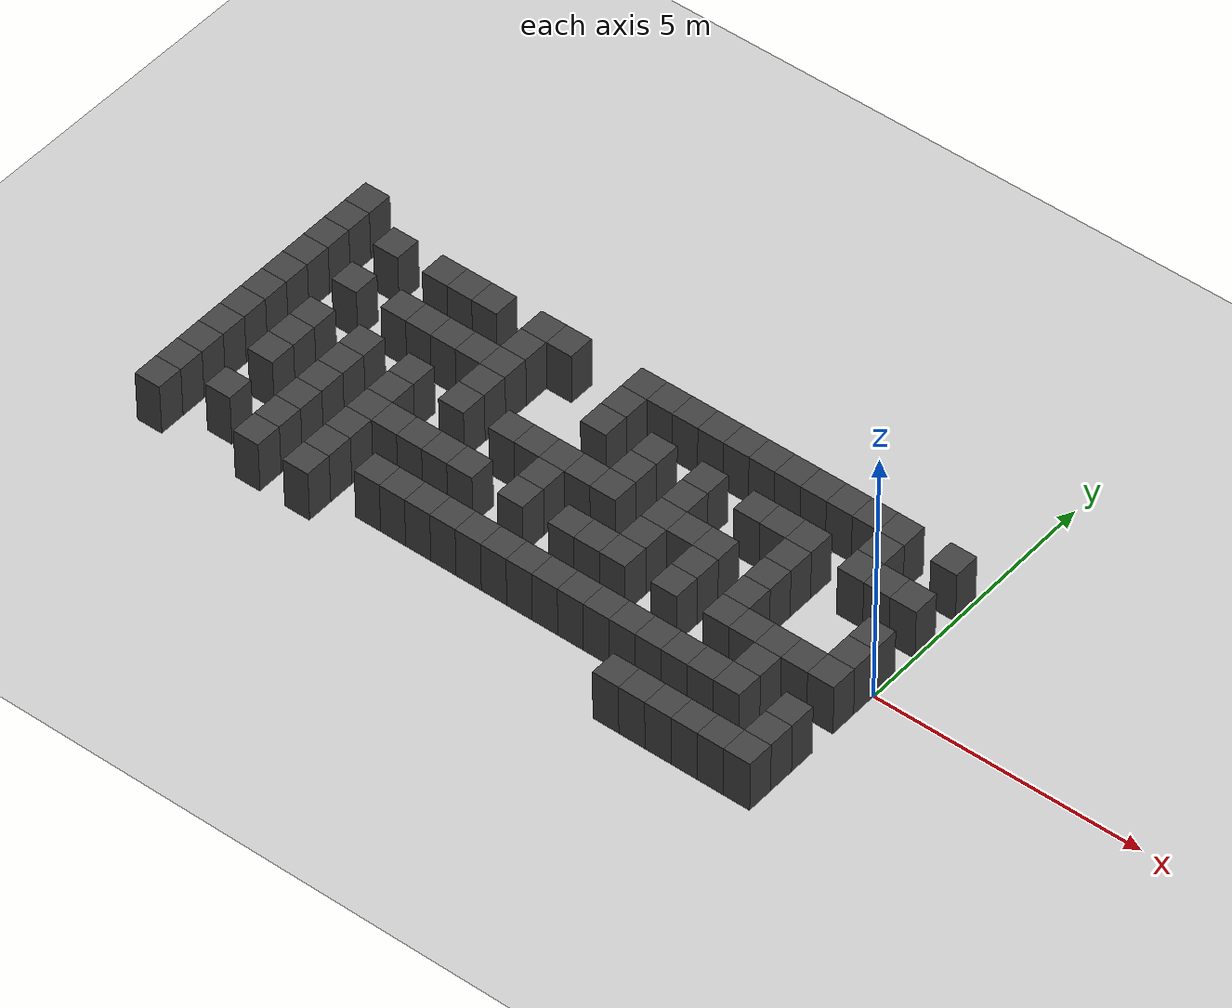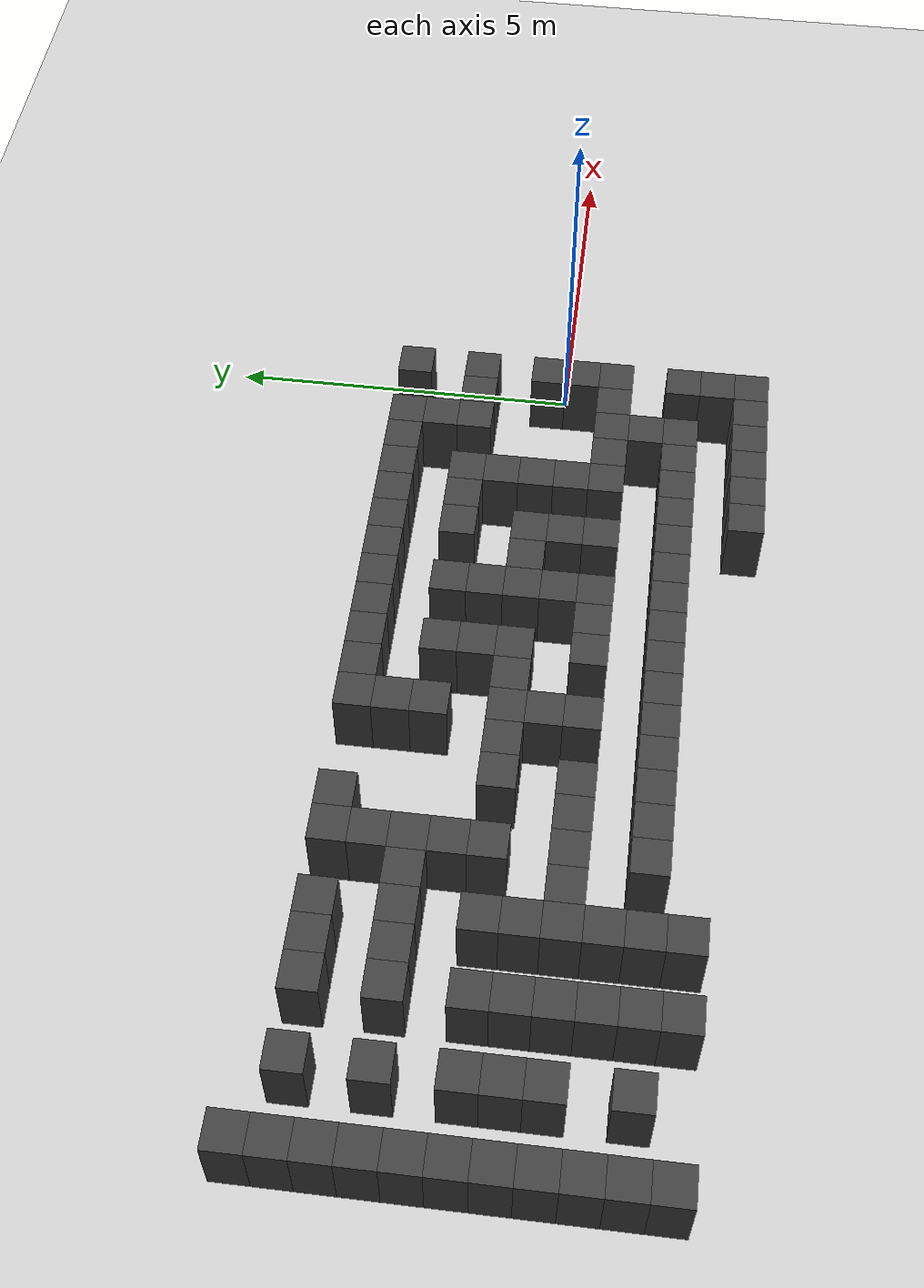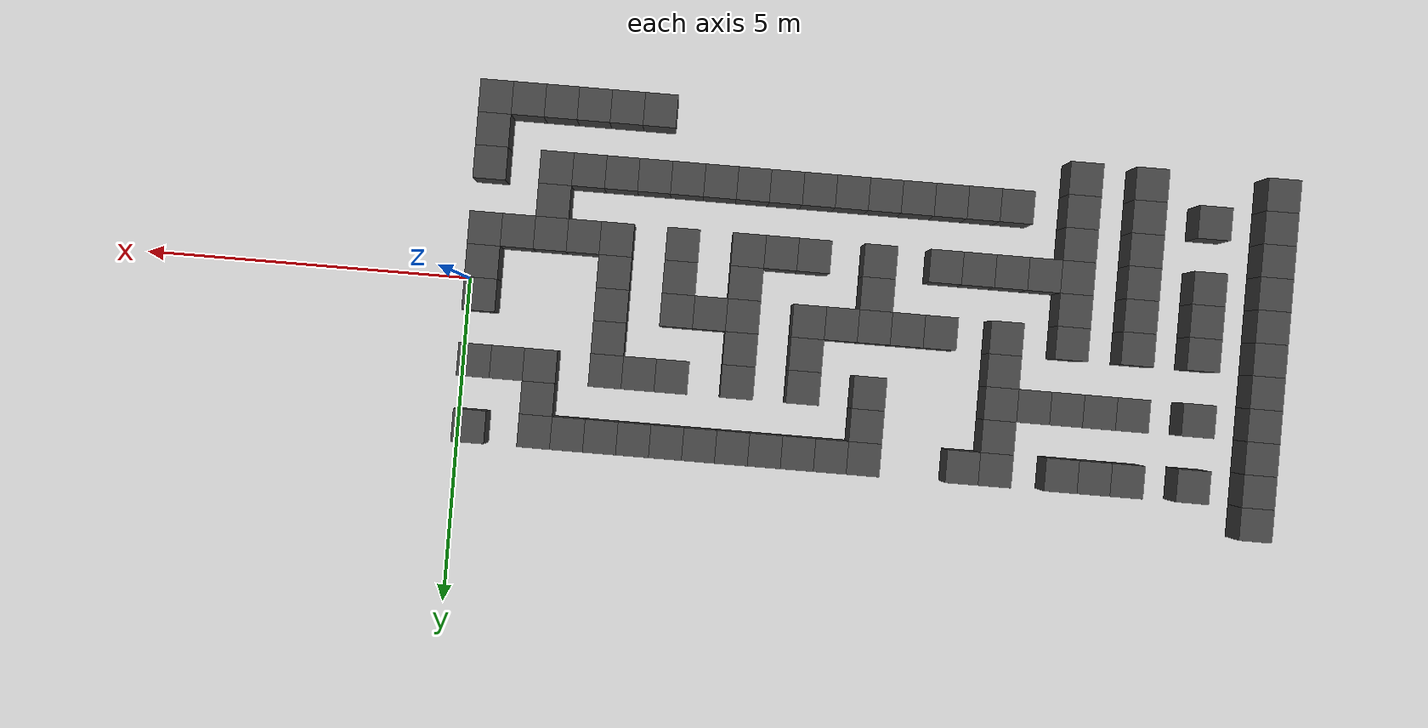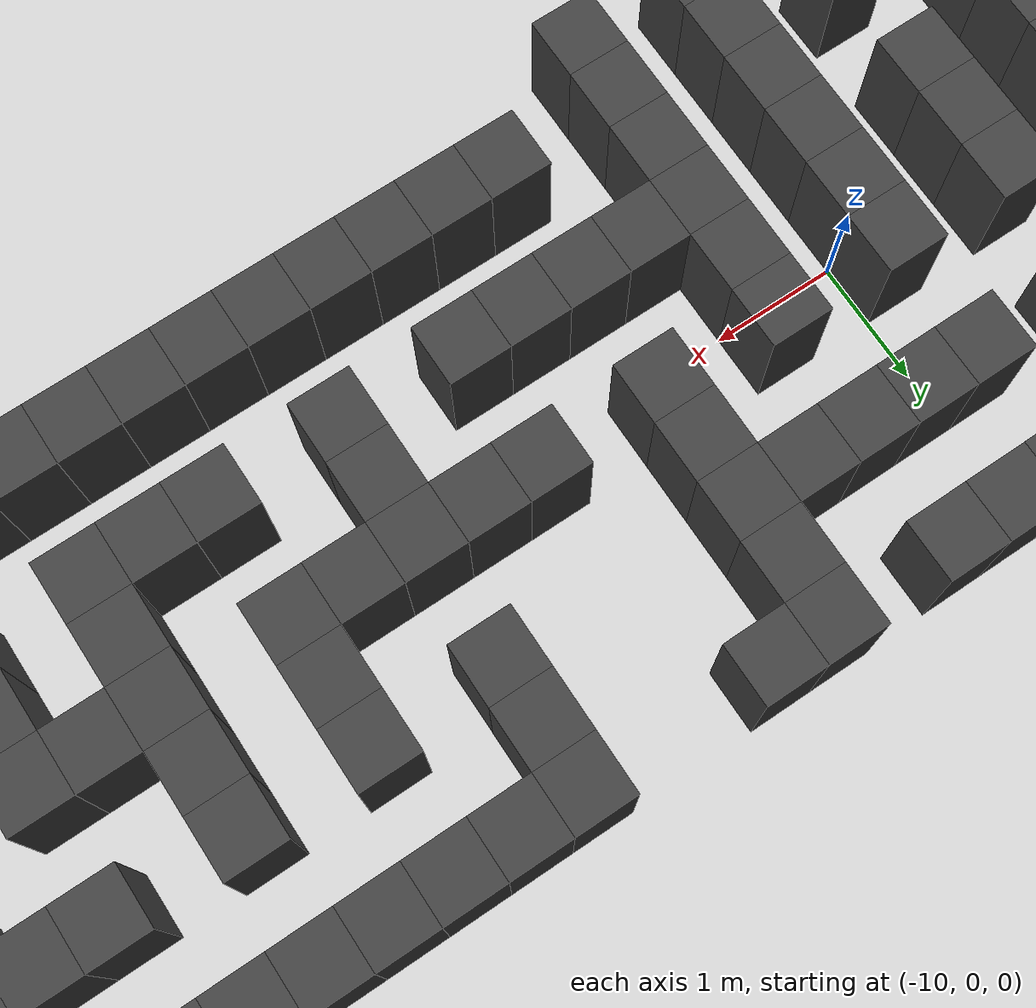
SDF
<sdf version="1.7">
 <world name="map_15293">
  <model name="ground_plane">
   <static>true</static>
   <link name="link">
    <collision name="collision">
     <geometry><plane><normal>0 0 1</normal><size>200 200</size></plane></geometry>
    </collision>
    <visual name="visual">
     <geometry><plane><normal>0 0 1</normal><size>200 200</size></plane></geometry>
     <material><ambient>0.8 0.8 0.8 1</ambient><diffuse>0.8 0.8 0.8 1</diffuse></material>
    </visual>
   </link>
  </model>
  <model name="maze_environment">
   <static>true</static>
   <link name="wall_457">
    <pose>-12.250 2.750 0.500 0 0 0</pose>
    <collision name="col"><geometry><box><size>0.5 0.5 1.0</size></box></geometry></collision>
    <visual name="vis">
     <geometry><box><size>0.5 0.5 1.0</size></box></geometry>
     <material><ambient>0.15 0.15 0.15 1</ambient><diffuse>0.25 0.25 0.25 1</diffuse></material>
    </visual>
   </link>
   <link name="wall_469">
    <pose>-12.250 2.250 0.500 0 0 0</pose>
    <collision name="col"><geometry><box><size>0.5 0.5 1.0</size></box></geometry></collision>
    <visual name="vis">
     <geometry><box><size>0.5 0.5 1.0</size></box></geometry>
     <material><ambient>0.15 0.15 0.15 1</ambient><diffuse>0.25 0.25 0.25 1</diffuse></material>
    </visual>
   </link>
   <link name="wall_470">
    <pose>-11.250 2.250 0.500 0 0 0</pose>
    <collision name="col"><geometry><box><size>0.5 0.5 1.0</size></box></geometry></collision>
    <visual name="vis">
     <geometry><box><size>0.5 0.5 1.0</size></box></geometry>
     <material><ambient>0.15 0.15 0.15 1</ambient><diffuse>0.25 0.25 0.25 1</diffuse></material>
    </visual>
   </link>
   <link name="wall_471">
    <pose>-10.250 2.250 0.500 0 0 0</pose>
    <collision name="col"><geometry><box><size>0.5 0.5 1.0</size></box></geometry></collision>
    <visual name="vis">
     <geometry><box><size>0.5 0.5 1.0</size></box></geometry>
     <material><ambient>0.15 0.15 0.15 1</ambient><diffuse>0.25 0.25 0.25 1</diffuse></material>
    </visual>
   </link>
   <link name="wall_472">
    <pose>-9.750 2.250 0.500 0 0 0</pose>
    <collision name="col"><geometry><box><size>0.5 0.5 1.0</size></box></geometry></collision>
    <visual name="vis">
     <geometry><box><size>0.5 0.5 1.0</size></box></geometry>
     <material><ambient>0.15 0.15 0.15 1</ambient><diffuse>0.25 0.25 0.25 1</diffuse></material>
    </visual>
   </link>
   <link name="wall_473">
    <pose>-9.250 2.250 0.500 0 0 0</pose>
    <collision name="col"><geometry><box><size>0.5 0.5 1.0</size></box></geometry></collision>
    <visual name="vis">
     <geometry><box><size>0.5 0.5 1.0</size></box></geometry>
     <material><ambient>0.15 0.15 0.15 1</ambient><diffuse>0.25 0.25 0.25 1</diffuse></material>
    </visual>
   </link>
   <link name="wall_474">
    <pose>-8.250 2.250 0.500 0 0 0</pose>
    <collision name="col"><geometry><box><size>0.5 0.5 1.0</size></box></geometry></collision>
    <visual name="vis">
     <geometry><box><size>0.5 0.5 1.0</size></box></geometry>
     <material><ambient>0.15 0.15 0.15 1</ambient><diffuse>0.25 0.25 0.25 1</diffuse></material>
    </visual>
   </link>
   <link name="wall_475">
    <pose>-7.750 2.250 0.500 0 0 0</pose>
    <collision name="col"><geometry><box><size>0.5 0.5 1.0</size></box></geometry></collision>
    <visual name="vis">
     <geometry><box><size>0.5 0.5 1.0</size></box></geometry>
     <material><ambient>0.15 0.15 0.15 1</ambient><diffuse>0.25 0.25 0.25 1</diffuse></material>
    </visual>
   </link>
   <link name="wall_476">
    <pose>-6.250 2.250 0.500 0 0 0</pose>
    <collision name="col"><geometry><box><size>0.5 0.5 1.0</size></box></geometry></collision>
    <visual name="vis">
     <geometry><box><size>0.5 0.5 1.0</size></box></geometry>
     <material><ambient>0.15 0.15 0.15 1</ambient><diffuse>0.25 0.25 0.25 1</diffuse></material>
    </visual>
   </link>
   <link name="wall_477">
    <pose>-5.750 2.250 0.500 0 0 0</pose>
    <collision name="col"><geometry><box><size>0.5 0.5 1.0</size></box></geometry></collision>
    <visual name="vis">
     <geometry><box><size>0.5 0.5 1.0</size></box></geometry>
     <material><ambient>0.15 0.15 0.15 1</ambient><diffuse>0.25 0.25 0.25 1</diffuse></material>
    </visual>
   </link>
   <link name="wall_478">
    <pose>-5.250 2.250 0.500 0 0 0</pose>
    <collision name="col"><geometry><box><size>0.5 0.5 1.0</size></box></geometry></collision>
    <visual name="vis">
     <geometry><box><size>0.5 0.5 1.0</size></box></geometry>
     <material><ambient>0.15 0.15 0.15 1</ambient><diffuse>0.25 0.25 0.25 1</diffuse></material>
    </visual>
   </link>
   <link name="wall_479">
    <pose>-4.750 2.250 0.500 0 0 0</pose>
    <collision name="col"><geometry><box><size>0.5 0.5 1.0</size></box></geometry></collision>
    <visual name="vis">
     <geometry><box><size>0.5 0.5 1.0</size></box></geometry>
     <material><ambient>0.15 0.15 0.15 1</ambient><diffuse>0.25 0.25 0.25 1</diffuse></material>
    </visual>
   </link>
   <link name="wall_480">
    <pose>-4.250 2.250 0.500 0 0 0</pose>
    <collision name="col"><geometry><box><size>0.5 0.5 1.0</size></box></geometry></collision>
    <visual name="vis">
     <geometry><box><size>0.5 0.5 1.0</size></box></geometry>
     <material><ambient>0.15 0.15 0.15 1</ambient><diffuse>0.25 0.25 0.25 1</diffuse></material>
    </visual>
   </link>
   <link name="wall_481">
    <pose>-3.750 2.250 0.500 0 0 0</pose>
    <collision name="col"><geometry><box><size>0.5 0.5 1.0</size></box></geometry></collision>
    <visual name="vis">
     <geometry><box><size>0.5 0.5 1.0</size></box></geometry>
     <material><ambient>0.15 0.15 0.15 1</ambient><diffuse>0.25 0.25 0.25 1</diffuse></material>
    </visual>
   </link>
   <link name="wall_482">
    <pose>-3.250 2.250 0.500 0 0 0</pose>
    <collision name="col"><geometry><box><size>0.5 0.5 1.0</size></box></geometry></collision>
    <visual name="vis">
     <geometry><box><size>0.5 0.5 1.0</size></box></geometry>
     <material><ambient>0.15 0.15 0.15 1</ambient><diffuse>0.25 0.25 0.25 1</diffuse></material>
    </visual>
   </link>
   <link name="wall_483">
    <pose>-2.750 2.250 0.500 0 0 0</pose>
    <collision name="col"><geometry><box><size>0.5 0.5 1.0</size></box></geometry></collision>
    <visual name="vis">
     <geometry><box><size>0.5 0.5 1.0</size></box></geometry>
     <material><ambient>0.15 0.15 0.15 1</ambient><diffuse>0.25 0.25 0.25 1</diffuse></material>
    </visual>
   </link>
   <link name="wall_484">
    <pose>-2.250 2.250 0.500 0 0 0</pose>
    <collision name="col"><geometry><box><size>0.5 0.5 1.0</size></box></geometry></collision>
    <visual name="vis">
     <geometry><box><size>0.5 0.5 1.0</size></box></geometry>
     <material><ambient>0.15 0.15 0.15 1</ambient><diffuse>0.25 0.25 0.25 1</diffuse></material>
    </visual>
   </link>
   <link name="wall_485">
    <pose>-1.750 2.250 0.500 0 0 0</pose>
    <collision name="col"><geometry><box><size>0.5 0.5 1.0</size></box></geometry></collision>
    <visual name="vis">
     <geometry><box><size>0.5 0.5 1.0</size></box></geometry>
     <material><ambient>0.15 0.15 0.15 1</ambient><diffuse>0.25 0.25 0.25 1</diffuse></material>
    </visual>
   </link>
   <link name="wall_486">
    <pose>-1.250 2.250 0.500 0 0 0</pose>
    <collision name="col"><geometry><box><size>0.5 0.5 1.0</size></box></geometry></collision>
    <visual name="vis">
     <geometry><box><size>0.5 0.5 1.0</size></box></geometry>
     <material><ambient>0.15 0.15 0.15 1</ambient><diffuse>0.25 0.25 0.25 1</diffuse></material>
    </visual>
   </link>
   <link name="wall_487">
    <pose>-0.250 2.250 0.500 0 0 0</pose>
    <collision name="col"><geometry><box><size>0.5 0.5 1.0</size></box></geometry></collision>
    <visual name="vis">
     <geometry><box><size>0.5 0.5 1.0</size></box></geometry>
     <material><ambient>0.15 0.15 0.15 1</ambient><diffuse>0.25 0.25 0.25 1</diffuse></material>
    </visual>
   </link>
   <link name="wall_506">
    <pose>-12.250 1.750 0.500 0 0 0</pose>
    <collision name="col"><geometry><box><size>0.5 0.5 1.0</size></box></geometry></collision>
    <visual name="vis">
     <geometry><box><size>0.5 0.5 1.0</size></box></geometry>
     <material><ambient>0.15 0.15 0.15 1</ambient><diffuse>0.25 0.25 0.25 1</diffuse></material>
    </visual>
   </link>
   <link name="wall_507">
    <pose>-8.250 1.750 0.500 0 0 0</pose>
    <collision name="col"><geometry><box><size>0.5 0.5 1.0</size></box></geometry></collision>
    <visual name="vis">
     <geometry><box><size>0.5 0.5 1.0</size></box></geometry>
     <material><ambient>0.15 0.15 0.15 1</ambient><diffuse>0.25 0.25 0.25 1</diffuse></material>
    </visual>
   </link>
   <link name="wall_508">
    <pose>-6.250 1.750 0.500 0 0 0</pose>
    <collision name="col"><geometry><box><size>0.5 0.5 1.0</size></box></geometry></collision>
    <visual name="vis">
     <geometry><box><size>0.5 0.5 1.0</size></box></geometry>
     <material><ambient>0.15 0.15 0.15 1</ambient><diffuse>0.25 0.25 0.25 1</diffuse></material>
    </visual>
   </link>
   <link name="wall_509">
    <pose>-1.250 1.750 0.500 0 0 0</pose>
    <collision name="col"><geometry><box><size>0.5 0.5 1.0</size></box></geometry></collision>
    <visual name="vis">
     <geometry><box><size>0.5 0.5 1.0</size></box></geometry>
     <material><ambient>0.15 0.15 0.15 1</ambient><diffuse>0.25 0.25 0.25 1</diffuse></material>
    </visual>
   </link>
   <link name="wall_519">
    <pose>-12.250 1.250 0.500 0 0 0</pose>
    <collision name="col"><geometry><box><size>0.5 0.5 1.0</size></box></geometry></collision>
    <visual name="vis">
     <geometry><box><size>0.5 0.5 1.0</size></box></geometry>
     <material><ambient>0.15 0.15 0.15 1</ambient><diffuse>0.25 0.25 0.25 1</diffuse></material>
    </visual>
   </link>
   <link name="wall_520">
    <pose>-11.250 1.250 0.500 0 0 0</pose>
    <collision name="col"><geometry><box><size>0.5 0.5 1.0</size></box></geometry></collision>
    <visual name="vis">
     <geometry><box><size>0.5 0.5 1.0</size></box></geometry>
     <material><ambient>0.15 0.15 0.15 1</ambient><diffuse>0.25 0.25 0.25 1</diffuse></material>
    </visual>
   </link>
   <link name="wall_521">
    <pose>-10.250 1.250 0.500 0 0 0</pose>
    <collision name="col"><geometry><box><size>0.5 0.5 1.0</size></box></geometry></collision>
    <visual name="vis">
     <geometry><box><size>0.5 0.5 1.0</size></box></geometry>
     <material><ambient>0.15 0.15 0.15 1</ambient><diffuse>0.25 0.25 0.25 1</diffuse></material>
    </visual>
   </link>
   <link name="wall_522">
    <pose>-9.750 1.250 0.500 0 0 0</pose>
    <collision name="col"><geometry><box><size>0.5 0.5 1.0</size></box></geometry></collision>
    <visual name="vis">
     <geometry><box><size>0.5 0.5 1.0</size></box></geometry>
     <material><ambient>0.15 0.15 0.15 1</ambient><diffuse>0.25 0.25 0.25 1</diffuse></material>
    </visual>
   </link>
   <link name="wall_523">
    <pose>-9.250 1.250 0.500 0 0 0</pose>
    <collision name="col"><geometry><box><size>0.5 0.5 1.0</size></box></geometry></collision>
    <visual name="vis">
     <geometry><box><size>0.5 0.5 1.0</size></box></geometry>
     <material><ambient>0.15 0.15 0.15 1</ambient><diffuse>0.25 0.25 0.25 1</diffuse></material>
    </visual>
   </link>
   <link name="wall_524">
    <pose>-8.750 1.250 0.500 0 0 0</pose>
    <collision name="col"><geometry><box><size>0.5 0.5 1.0</size></box></geometry></collision>
    <visual name="vis">
     <geometry><box><size>0.5 0.5 1.0</size></box></geometry>
     <material><ambient>0.15 0.15 0.15 1</ambient><diffuse>0.25 0.25 0.25 1</diffuse></material>
    </visual>
   </link>
   <link name="wall_525">
    <pose>-8.250 1.250 0.500 0 0 0</pose>
    <collision name="col"><geometry><box><size>0.5 0.5 1.0</size></box></geometry></collision>
    <visual name="vis">
     <geometry><box><size>0.5 0.5 1.0</size></box></geometry>
     <material><ambient>0.15 0.15 0.15 1</ambient><diffuse>0.25 0.25 0.25 1</diffuse></material>
    </visual>
   </link>
   <link name="wall_526">
    <pose>-6.250 1.250 0.500 0 0 0</pose>
    <collision name="col"><geometry><box><size>0.5 0.5 1.0</size></box></geometry></collision>
    <visual name="vis">
     <geometry><box><size>0.5 0.5 1.0</size></box></geometry>
     <material><ambient>0.15 0.15 0.15 1</ambient><diffuse>0.25 0.25 0.25 1</diffuse></material>
    </visual>
   </link>
   <link name="wall_527">
    <pose>-5.250 1.250 0.500 0 0 0</pose>
    <collision name="col"><geometry><box><size>0.5 0.5 1.0</size></box></geometry></collision>
    <visual name="vis">
     <geometry><box><size>0.5 0.5 1.0</size></box></geometry>
     <material><ambient>0.15 0.15 0.15 1</ambient><diffuse>0.25 0.25 0.25 1</diffuse></material>
    </visual>
   </link>
   <link name="wall_528">
    <pose>-4.250 1.250 0.500 0 0 0</pose>
    <collision name="col"><geometry><box><size>0.5 0.5 1.0</size></box></geometry></collision>
    <visual name="vis">
     <geometry><box><size>0.5 0.5 1.0</size></box></geometry>
     <material><ambient>0.15 0.15 0.15 1</ambient><diffuse>0.25 0.25 0.25 1</diffuse></material>
    </visual>
   </link>
   <link name="wall_529">
    <pose>-3.250 1.250 0.500 0 0 0</pose>
    <collision name="col"><geometry><box><size>0.5 0.5 1.0</size></box></geometry></collision>
    <visual name="vis">
     <geometry><box><size>0.5 0.5 1.0</size></box></geometry>
     <material><ambient>0.15 0.15 0.15 1</ambient><diffuse>0.25 0.25 0.25 1</diffuse></material>
    </visual>
   </link>
   <link name="wall_530">
    <pose>-2.750 1.250 0.500 0 0 0</pose>
    <collision name="col"><geometry><box><size>0.5 0.5 1.0</size></box></geometry></collision>
    <visual name="vis">
     <geometry><box><size>0.5 0.5 1.0</size></box></geometry>
     <material><ambient>0.15 0.15 0.15 1</ambient><diffuse>0.25 0.25 0.25 1</diffuse></material>
    </visual>
   </link>
   <link name="wall_531">
    <pose>-2.250 1.250 0.500 0 0 0</pose>
    <collision name="col"><geometry><box><size>0.5 0.5 1.0</size></box></geometry></collision>
    <visual name="vis">
     <geometry><box><size>0.5 0.5 1.0</size></box></geometry>
     <material><ambient>0.15 0.15 0.15 1</ambient><diffuse>0.25 0.25 0.25 1</diffuse></material>
    </visual>
   </link>
   <link name="wall_532">
    <pose>-1.250 1.250 0.500 0 0 0</pose>
    <collision name="col"><geometry><box><size>0.5 0.5 1.0</size></box></geometry></collision>
    <visual name="vis">
     <geometry><box><size>0.5 0.5 1.0</size></box></geometry>
     <material><ambient>0.15 0.15 0.15 1</ambient><diffuse>0.25 0.25 0.25 1</diffuse></material>
    </visual>
   </link>
   <link name="wall_533">
    <pose>-0.750 1.250 0.500 0 0 0</pose>
    <collision name="col"><geometry><box><size>0.5 0.5 1.0</size></box></geometry></collision>
    <visual name="vis">
     <geometry><box><size>0.5 0.5 1.0</size></box></geometry>
     <material><ambient>0.15 0.15 0.15 1</ambient><diffuse>0.25 0.25 0.25 1</diffuse></material>
    </visual>
   </link>
   <link name="wall_534">
    <pose>-0.250 1.250 0.500 0 0 0</pose>
    <collision name="col"><geometry><box><size>0.5 0.5 1.0</size></box></geometry></collision>
    <visual name="vis">
     <geometry><box><size>0.5 0.5 1.0</size></box></geometry>
     <material><ambient>0.15 0.15 0.15 1</ambient><diffuse>0.25 0.25 0.25 1</diffuse></material>
    </visual>
   </link>
   <link name="wall_553">
    <pose>-12.250 0.750 0.500 0 0 0</pose>
    <collision name="col"><geometry><box><size>0.5 0.5 1.0</size></box></geometry></collision>
    <visual name="vis">
     <geometry><box><size>0.5 0.5 1.0</size></box></geometry>
     <material><ambient>0.15 0.15 0.15 1</ambient><diffuse>0.25 0.25 0.25 1</diffuse></material>
    </visual>
   </link>
   <link name="wall_554">
    <pose>-8.250 0.750 0.500 0 0 0</pose>
    <collision name="col"><geometry><box><size>0.5 0.5 1.0</size></box></geometry></collision>
    <visual name="vis">
     <geometry><box><size>0.5 0.5 1.0</size></box></geometry>
     <material><ambient>0.15 0.15 0.15 1</ambient><diffuse>0.25 0.25 0.25 1</diffuse></material>
    </visual>
   </link>
   <link name="wall_555">
    <pose>-5.250 0.750 0.500 0 0 0</pose>
    <collision name="col"><geometry><box><size>0.5 0.5 1.0</size></box></geometry></collision>
    <visual name="vis">
     <geometry><box><size>0.5 0.5 1.0</size></box></geometry>
     <material><ambient>0.15 0.15 0.15 1</ambient><diffuse>0.25 0.25 0.25 1</diffuse></material>
    </visual>
   </link>
   <link name="wall_556">
    <pose>-4.250 0.750 0.500 0 0 0</pose>
    <collision name="col"><geometry><box><size>0.5 0.5 1.0</size></box></geometry></collision>
    <visual name="vis">
     <geometry><box><size>0.5 0.5 1.0</size></box></geometry>
     <material><ambient>0.15 0.15 0.15 1</ambient><diffuse>0.25 0.25 0.25 1</diffuse></material>
    </visual>
   </link>
   <link name="wall_557">
    <pose>-2.250 0.750 0.500 0 0 0</pose>
    <collision name="col"><geometry><box><size>0.5 0.5 1.0</size></box></geometry></collision>
    <visual name="vis">
     <geometry><box><size>0.5 0.5 1.0</size></box></geometry>
     <material><ambient>0.15 0.15 0.15 1</ambient><diffuse>0.25 0.25 0.25 1</diffuse></material>
    </visual>
   </link>
   <link name="wall_564">
    <pose>-12.250 0.250 0.500 0 0 0</pose>
    <collision name="col"><geometry><box><size>0.5 0.5 1.0</size></box></geometry></collision>
    <visual name="vis">
     <geometry><box><size>0.5 0.5 1.0</size></box></geometry>
     <material><ambient>0.15 0.15 0.15 1</ambient><diffuse>0.25 0.25 0.25 1</diffuse></material>
    </visual>
   </link>
   <link name="wall_565">
    <pose>-11.250 0.250 0.500 0 0 0</pose>
    <collision name="col"><geometry><box><size>0.5 0.5 1.0</size></box></geometry></collision>
    <visual name="vis">
     <geometry><box><size>0.5 0.5 1.0</size></box></geometry>
     <material><ambient>0.15 0.15 0.15 1</ambient><diffuse>0.25 0.25 0.25 1</diffuse></material>
    </visual>
   </link>
   <link name="wall_566">
    <pose>-10.250 0.250 0.500 0 0 0</pose>
    <collision name="col"><geometry><box><size>0.5 0.5 1.0</size></box></geometry></collision>
    <visual name="vis">
     <geometry><box><size>0.5 0.5 1.0</size></box></geometry>
     <material><ambient>0.15 0.15 0.15 1</ambient><diffuse>0.25 0.25 0.25 1</diffuse></material>
    </visual>
   </link>
   <link name="wall_567">
    <pose>-9.250 0.250 0.500 0 0 0</pose>
    <collision name="col"><geometry><box><size>0.5 0.5 1.0</size></box></geometry></collision>
    <visual name="vis">
     <geometry><box><size>0.5 0.5 1.0</size></box></geometry>
     <material><ambient>0.15 0.15 0.15 1</ambient><diffuse>0.25 0.25 0.25 1</diffuse></material>
    </visual>
   </link>
   <link name="wall_568">
    <pose>-8.250 0.250 0.500 0 0 0</pose>
    <collision name="col"><geometry><box><size>0.5 0.5 1.0</size></box></geometry></collision>
    <visual name="vis">
     <geometry><box><size>0.5 0.5 1.0</size></box></geometry>
     <material><ambient>0.15 0.15 0.15 1</ambient><diffuse>0.25 0.25 0.25 1</diffuse></material>
    </visual>
   </link>
   <link name="wall_569">
    <pose>-7.250 0.250 0.500 0 0 0</pose>
    <collision name="col"><geometry><box><size>0.5 0.5 1.0</size></box></geometry></collision>
    <visual name="vis">
     <geometry><box><size>0.5 0.5 1.0</size></box></geometry>
     <material><ambient>0.15 0.15 0.15 1</ambient><diffuse>0.25 0.25 0.25 1</diffuse></material>
    </visual>
   </link>
   <link name="wall_570">
    <pose>-6.750 0.250 0.500 0 0 0</pose>
    <collision name="col"><geometry><box><size>0.5 0.5 1.0</size></box></geometry></collision>
    <visual name="vis">
     <geometry><box><size>0.5 0.5 1.0</size></box></geometry>
     <material><ambient>0.15 0.15 0.15 1</ambient><diffuse>0.25 0.25 0.25 1</diffuse></material>
    </visual>
   </link>
   <link name="wall_571">
    <pose>-6.250 0.250 0.500 0 0 0</pose>
    <collision name="col"><geometry><box><size>0.5 0.5 1.0</size></box></geometry></collision>
    <visual name="vis">
     <geometry><box><size>0.5 0.5 1.0</size></box></geometry>
     <material><ambient>0.15 0.15 0.15 1</ambient><diffuse>0.25 0.25 0.25 1</diffuse></material>
    </visual>
   </link>
   <link name="wall_572">
    <pose>-5.750 0.250 0.500 0 0 0</pose>
    <collision name="col"><geometry><box><size>0.5 0.5 1.0</size></box></geometry></collision>
    <visual name="vis">
     <geometry><box><size>0.5 0.5 1.0</size></box></geometry>
     <material><ambient>0.15 0.15 0.15 1</ambient><diffuse>0.25 0.25 0.25 1</diffuse></material>
    </visual>
   </link>
   <link name="wall_573">
    <pose>-5.250 0.250 0.500 0 0 0</pose>
    <collision name="col"><geometry><box><size>0.5 0.5 1.0</size></box></geometry></collision>
    <visual name="vis">
     <geometry><box><size>0.5 0.5 1.0</size></box></geometry>
     <material><ambient>0.15 0.15 0.15 1</ambient><diffuse>0.25 0.25 0.25 1</diffuse></material>
    </visual>
   </link>
   <link name="wall_574">
    <pose>-4.250 0.250 0.500 0 0 0</pose>
    <collision name="col"><geometry><box><size>0.5 0.5 1.0</size></box></geometry></collision>
    <visual name="vis">
     <geometry><box><size>0.5 0.5 1.0</size></box></geometry>
     <material><ambient>0.15 0.15 0.15 1</ambient><diffuse>0.25 0.25 0.25 1</diffuse></material>
    </visual>
   </link>
   <link name="wall_575">
    <pose>-3.750 0.250 0.500 0 0 0</pose>
    <collision name="col"><geometry><box><size>0.5 0.5 1.0</size></box></geometry></collision>
    <visual name="vis">
     <geometry><box><size>0.5 0.5 1.0</size></box></geometry>
     <material><ambient>0.15 0.15 0.15 1</ambient><diffuse>0.25 0.25 0.25 1</diffuse></material>
    </visual>
   </link>
   <link name="wall_576">
    <pose>-3.250 0.250 0.500 0 0 0</pose>
    <collision name="col"><geometry><box><size>0.5 0.5 1.0</size></box></geometry></collision>
    <visual name="vis">
     <geometry><box><size>0.5 0.5 1.0</size></box></geometry>
     <material><ambient>0.15 0.15 0.15 1</ambient><diffuse>0.25 0.25 0.25 1</diffuse></material>
    </visual>
   </link>
   <link name="wall_577">
    <pose>-2.250 0.250 0.500 0 0 0</pose>
    <collision name="col"><geometry><box><size>0.5 0.5 1.0</size></box></geometry></collision>
    <visual name="vis">
     <geometry><box><size>0.5 0.5 1.0</size></box></geometry>
     <material><ambient>0.15 0.15 0.15 1</ambient><diffuse>0.25 0.25 0.25 1</diffuse></material>
    </visual>
   </link>
   <link name="wall_578">
    <pose>-0.250 0.250 0.500 0 0 0</pose>
    <collision name="col"><geometry><box><size>0.5 0.5 1.0</size></box></geometry></collision>
    <visual name="vis">
     <geometry><box><size>0.5 0.5 1.0</size></box></geometry>
     <material><ambient>0.15 0.15 0.15 1</ambient><diffuse>0.25 0.25 0.25 1</diffuse></material>
    </visual>
   </link>
   <link name="wall_598">
    <pose>-12.250 -0.250 0.500 0 0 0</pose>
    <collision name="col"><geometry><box><size>0.5 0.5 1.0</size></box></geometry></collision>
    <visual name="vis">
     <geometry><box><size>0.5 0.5 1.0</size></box></geometry>
     <material><ambient>0.15 0.15 0.15 1</ambient><diffuse>0.25 0.25 0.25 1</diffuse></material>
    </visual>
   </link>
   <link name="wall_599">
    <pose>-11.250 -0.250 0.500 0 0 0</pose>
    <collision name="col"><geometry><box><size>0.5 0.5 1.0</size></box></geometry></collision>
    <visual name="vis">
     <geometry><box><size>0.5 0.5 1.0</size></box></geometry>
     <material><ambient>0.15 0.15 0.15 1</ambient><diffuse>0.25 0.25 0.25 1</diffuse></material>
    </visual>
   </link>
   <link name="wall_600">
    <pose>-10.250 -0.250 0.500 0 0 0</pose>
    <collision name="col"><geometry><box><size>0.5 0.5 1.0</size></box></geometry></collision>
    <visual name="vis">
     <geometry><box><size>0.5 0.5 1.0</size></box></geometry>
     <material><ambient>0.15 0.15 0.15 1</ambient><diffuse>0.25 0.25 0.25 1</diffuse></material>
    </visual>
   </link>
   <link name="wall_601">
    <pose>-9.250 -0.250 0.500 0 0 0</pose>
    <collision name="col"><geometry><box><size>0.5 0.5 1.0</size></box></geometry></collision>
    <visual name="vis">
     <geometry><box><size>0.5 0.5 1.0</size></box></geometry>
     <material><ambient>0.15 0.15 0.15 1</ambient><diffuse>0.25 0.25 0.25 1</diffuse></material>
    </visual>
   </link>
   <link name="wall_602">
    <pose>-6.250 -0.250 0.500 0 0 0</pose>
    <collision name="col"><geometry><box><size>0.5 0.5 1.0</size></box></geometry></collision>
    <visual name="vis">
     <geometry><box><size>0.5 0.5 1.0</size></box></geometry>
     <material><ambient>0.15 0.15 0.15 1</ambient><diffuse>0.25 0.25 0.25 1</diffuse></material>
    </visual>
   </link>
   <link name="wall_603">
    <pose>-4.250 -0.250 0.500 0 0 0</pose>
    <collision name="col"><geometry><box><size>0.5 0.5 1.0</size></box></geometry></collision>
    <visual name="vis">
     <geometry><box><size>0.5 0.5 1.0</size></box></geometry>
     <material><ambient>0.15 0.15 0.15 1</ambient><diffuse>0.25 0.25 0.25 1</diffuse></material>
    </visual>
   </link>
   <link name="wall_604">
    <pose>-3.250 -0.250 0.500 0 0 0</pose>
    <collision name="col"><geometry><box><size>0.5 0.5 1.0</size></box></geometry></collision>
    <visual name="vis">
     <geometry><box><size>0.5 0.5 1.0</size></box></geometry>
     <material><ambient>0.15 0.15 0.15 1</ambient><diffuse>0.25 0.25 0.25 1</diffuse></material>
    </visual>
   </link>
   <link name="wall_605">
    <pose>-2.250 -0.250 0.500 0 0 0</pose>
    <collision name="col"><geometry><box><size>0.5 0.5 1.0</size></box></geometry></collision>
    <visual name="vis">
     <geometry><box><size>0.5 0.5 1.0</size></box></geometry>
     <material><ambient>0.15 0.15 0.15 1</ambient><diffuse>0.25 0.25 0.25 1</diffuse></material>
    </visual>
   </link>
   <link name="wall_606">
    <pose>-0.250 -0.250 0.500 0 0 0</pose>
    <collision name="col"><geometry><box><size>0.5 0.5 1.0</size></box></geometry></collision>
    <visual name="vis">
     <geometry><box><size>0.5 0.5 1.0</size></box></geometry>
     <material><ambient>0.15 0.15 0.15 1</ambient><diffuse>0.25 0.25 0.25 1</diffuse></material>
    </visual>
   </link>
   <link name="wall_613">
    <pose>-12.250 -0.750 0.500 0 0 0</pose>
    <collision name="col"><geometry><box><size>0.5 0.5 1.0</size></box></geometry></collision>
    <visual name="vis">
     <geometry><box><size>0.5 0.5 1.0</size></box></geometry>
     <material><ambient>0.15 0.15 0.15 1</ambient><diffuse>0.25 0.25 0.25 1</diffuse></material>
    </visual>
   </link>
   <link name="wall_614">
    <pose>-11.250 -0.750 0.500 0 0 0</pose>
    <collision name="col"><geometry><box><size>0.5 0.5 1.0</size></box></geometry></collision>
    <visual name="vis">
     <geometry><box><size>0.5 0.5 1.0</size></box></geometry>
     <material><ambient>0.15 0.15 0.15 1</ambient><diffuse>0.25 0.25 0.25 1</diffuse></material>
    </visual>
   </link>
   <link name="wall_615">
    <pose>-10.250 -0.750 0.500 0 0 0</pose>
    <collision name="col"><geometry><box><size>0.5 0.5 1.0</size></box></geometry></collision>
    <visual name="vis">
     <geometry><box><size>0.5 0.5 1.0</size></box></geometry>
     <material><ambient>0.15 0.15 0.15 1</ambient><diffuse>0.25 0.25 0.25 1</diffuse></material>
    </visual>
   </link>
   <link name="wall_616">
    <pose>-9.250 -0.750 0.500 0 0 0</pose>
    <collision name="col"><geometry><box><size>0.5 0.5 1.0</size></box></geometry></collision>
    <visual name="vis">
     <geometry><box><size>0.5 0.5 1.0</size></box></geometry>
     <material><ambient>0.15 0.15 0.15 1</ambient><diffuse>0.25 0.25 0.25 1</diffuse></material>
    </visual>
   </link>
   <link name="wall_617">
    <pose>-8.750 -0.750 0.500 0 0 0</pose>
    <collision name="col"><geometry><box><size>0.5 0.5 1.0</size></box></geometry></collision>
    <visual name="vis">
     <geometry><box><size>0.5 0.5 1.0</size></box></geometry>
     <material><ambient>0.15 0.15 0.15 1</ambient><diffuse>0.25 0.25 0.25 1</diffuse></material>
    </visual>
   </link>
   <link name="wall_618">
    <pose>-8.250 -0.750 0.500 0 0 0</pose>
    <collision name="col"><geometry><box><size>0.5 0.5 1.0</size></box></geometry></collision>
    <visual name="vis">
     <geometry><box><size>0.5 0.5 1.0</size></box></geometry>
     <material><ambient>0.15 0.15 0.15 1</ambient><diffuse>0.25 0.25 0.25 1</diffuse></material>
    </visual>
   </link>
   <link name="wall_619">
    <pose>-7.750 -0.750 0.500 0 0 0</pose>
    <collision name="col"><geometry><box><size>0.5 0.5 1.0</size></box></geometry></collision>
    <visual name="vis">
     <geometry><box><size>0.5 0.5 1.0</size></box></geometry>
     <material><ambient>0.15 0.15 0.15 1</ambient><diffuse>0.25 0.25 0.25 1</diffuse></material>
    </visual>
   </link>
   <link name="wall_620">
    <pose>-7.250 -0.750 0.500 0 0 0</pose>
    <collision name="col"><geometry><box><size>0.5 0.5 1.0</size></box></geometry></collision>
    <visual name="vis">
     <geometry><box><size>0.5 0.5 1.0</size></box></geometry>
     <material><ambient>0.15 0.15 0.15 1</ambient><diffuse>0.25 0.25 0.25 1</diffuse></material>
    </visual>
   </link>
   <link name="wall_621">
    <pose>-6.250 -0.750 0.500 0 0 0</pose>
    <collision name="col"><geometry><box><size>0.5 0.5 1.0</size></box></geometry></collision>
    <visual name="vis">
     <geometry><box><size>0.5 0.5 1.0</size></box></geometry>
     <material><ambient>0.15 0.15 0.15 1</ambient><diffuse>0.25 0.25 0.25 1</diffuse></material>
    </visual>
   </link>
   <link name="wall_622">
    <pose>-5.250 -0.750 0.500 0 0 0</pose>
    <collision name="col"><geometry><box><size>0.5 0.5 1.0</size></box></geometry></collision>
    <visual name="vis">
     <geometry><box><size>0.5 0.5 1.0</size></box></geometry>
     <material><ambient>0.15 0.15 0.15 1</ambient><diffuse>0.25 0.25 0.25 1</diffuse></material>
    </visual>
   </link>
   <link name="wall_623">
    <pose>-4.750 -0.750 0.500 0 0 0</pose>
    <collision name="col"><geometry><box><size>0.5 0.5 1.0</size></box></geometry></collision>
    <visual name="vis">
     <geometry><box><size>0.5 0.5 1.0</size></box></geometry>
     <material><ambient>0.15 0.15 0.15 1</ambient><diffuse>0.25 0.25 0.25 1</diffuse></material>
    </visual>
   </link>
   <link name="wall_624">
    <pose>-4.250 -0.750 0.500 0 0 0</pose>
    <collision name="col"><geometry><box><size>0.5 0.5 1.0</size></box></geometry></collision>
    <visual name="vis">
     <geometry><box><size>0.5 0.5 1.0</size></box></geometry>
     <material><ambient>0.15 0.15 0.15 1</ambient><diffuse>0.25 0.25 0.25 1</diffuse></material>
    </visual>
   </link>
   <link name="wall_625">
    <pose>-3.250 -0.750 0.500 0 0 0</pose>
    <collision name="col"><geometry><box><size>0.5 0.5 1.0</size></box></geometry></collision>
    <visual name="vis">
     <geometry><box><size>0.5 0.5 1.0</size></box></geometry>
     <material><ambient>0.15 0.15 0.15 1</ambient><diffuse>0.25 0.25 0.25 1</diffuse></material>
    </visual>
   </link>
   <link name="wall_626">
    <pose>-2.250 -0.750 0.500 0 0 0</pose>
    <collision name="col"><geometry><box><size>0.5 0.5 1.0</size></box></geometry></collision>
    <visual name="vis">
     <geometry><box><size>0.5 0.5 1.0</size></box></geometry>
     <material><ambient>0.15 0.15 0.15 1</ambient><diffuse>0.25 0.25 0.25 1</diffuse></material>
    </visual>
   </link>
   <link name="wall_627">
    <pose>-1.750 -0.750 0.500 0 0 0</pose>
    <collision name="col"><geometry><box><size>0.5 0.5 1.0</size></box></geometry></collision>
    <visual name="vis">
     <geometry><box><size>0.5 0.5 1.0</size></box></geometry>
     <material><ambient>0.15 0.15 0.15 1</ambient><diffuse>0.25 0.25 0.25 1</diffuse></material>
    </visual>
   </link>
   <link name="wall_628">
    <pose>-1.250 -0.750 0.500 0 0 0</pose>
    <collision name="col"><geometry><box><size>0.5 0.5 1.0</size></box></geometry></collision>
    <visual name="vis">
     <geometry><box><size>0.5 0.5 1.0</size></box></geometry>
     <material><ambient>0.15 0.15 0.15 1</ambient><diffuse>0.25 0.25 0.25 1</diffuse></material>
    </visual>
   </link>
   <link name="wall_629">
    <pose>-0.750 -0.750 0.500 0 0 0</pose>
    <collision name="col"><geometry><box><size>0.5 0.5 1.0</size></box></geometry></collision>
    <visual name="vis">
     <geometry><box><size>0.5 0.5 1.0</size></box></geometry>
     <material><ambient>0.15 0.15 0.15 1</ambient><diffuse>0.25 0.25 0.25 1</diffuse></material>
    </visual>
   </link>
   <link name="wall_630">
    <pose>-0.250 -0.750 0.500 0 0 0</pose>
    <collision name="col"><geometry><box><size>0.5 0.5 1.0</size></box></geometry></collision>
    <visual name="vis">
     <geometry><box><size>0.5 0.5 1.0</size></box></geometry>
     <material><ambient>0.15 0.15 0.15 1</ambient><diffuse>0.25 0.25 0.25 1</diffuse></material>
    </visual>
   </link>
   <link name="wall_647">
    <pose>-12.250 -1.250 0.500 0 0 0</pose>
    <collision name="col"><geometry><box><size>0.5 0.5 1.0</size></box></geometry></collision>
    <visual name="vis">
     <geometry><box><size>0.5 0.5 1.0</size></box></geometry>
     <material><ambient>0.15 0.15 0.15 1</ambient><diffuse>0.25 0.25 0.25 1</diffuse></material>
    </visual>
   </link>
   <link name="wall_648">
    <pose>-10.250 -1.250 0.500 0 0 0</pose>
    <collision name="col"><geometry><box><size>0.5 0.5 1.0</size></box></geometry></collision>
    <visual name="vis">
     <geometry><box><size>0.5 0.5 1.0</size></box></geometry>
     <material><ambient>0.15 0.15 0.15 1</ambient><diffuse>0.25 0.25 0.25 1</diffuse></material>
    </visual>
   </link>
   <link name="wall_649">
    <pose>-9.250 -1.250 0.500 0 0 0</pose>
    <collision name="col"><geometry><box><size>0.5 0.5 1.0</size></box></geometry></collision>
    <visual name="vis">
     <geometry><box><size>0.5 0.5 1.0</size></box></geometry>
     <material><ambient>0.15 0.15 0.15 1</ambient><diffuse>0.25 0.25 0.25 1</diffuse></material>
    </visual>
   </link>
   <link name="wall_650">
    <pose>-1.250 -1.250 0.500 0 0 0</pose>
    <collision name="col"><geometry><box><size>0.5 0.5 1.0</size></box></geometry></collision>
    <visual name="vis">
     <geometry><box><size>0.5 0.5 1.0</size></box></geometry>
     <material><ambient>0.15 0.15 0.15 1</ambient><diffuse>0.25 0.25 0.25 1</diffuse></material>
    </visual>
   </link>
   <link name="wall_656">
    <pose>-12.250 -1.750 0.500 0 0 0</pose>
    <collision name="col"><geometry><box><size>0.5 0.5 1.0</size></box></geometry></collision>
    <visual name="vis">
     <geometry><box><size>0.5 0.5 1.0</size></box></geometry>
     <material><ambient>0.15 0.15 0.15 1</ambient><diffuse>0.25 0.25 0.25 1</diffuse></material>
    </visual>
   </link>
   <link name="wall_657">
    <pose>-11.250 -1.750 0.500 0 0 0</pose>
    <collision name="col"><geometry><box><size>0.5 0.5 1.0</size></box></geometry></collision>
    <visual name="vis">
     <geometry><box><size>0.5 0.5 1.0</size></box></geometry>
     <material><ambient>0.15 0.15 0.15 1</ambient><diffuse>0.25 0.25 0.25 1</diffuse></material>
    </visual>
   </link>
   <link name="wall_658">
    <pose>-10.250 -1.750 0.500 0 0 0</pose>
    <collision name="col"><geometry><box><size>0.5 0.5 1.0</size></box></geometry></collision>
    <visual name="vis">
     <geometry><box><size>0.5 0.5 1.0</size></box></geometry>
     <material><ambient>0.15 0.15 0.15 1</ambient><diffuse>0.25 0.25 0.25 1</diffuse></material>
    </visual>
   </link>
   <link name="wall_659">
    <pose>-9.250 -1.750 0.500 0 0 0</pose>
    <collision name="col"><geometry><box><size>0.5 0.5 1.0</size></box></geometry></collision>
    <visual name="vis">
     <geometry><box><size>0.5 0.5 1.0</size></box></geometry>
     <material><ambient>0.15 0.15 0.15 1</ambient><diffuse>0.25 0.25 0.25 1</diffuse></material>
    </visual>
   </link>
   <link name="wall_660">
    <pose>-8.250 -1.750 0.500 0 0 0</pose>
    <collision name="col"><geometry><box><size>0.5 0.5 1.0</size></box></geometry></collision>
    <visual name="vis">
     <geometry><box><size>0.5 0.5 1.0</size></box></geometry>
     <material><ambient>0.15 0.15 0.15 1</ambient><diffuse>0.25 0.25 0.25 1</diffuse></material>
    </visual>
   </link>
   <link name="wall_661">
    <pose>-7.750 -1.750 0.500 0 0 0</pose>
    <collision name="col"><geometry><box><size>0.5 0.5 1.0</size></box></geometry></collision>
    <visual name="vis">
     <geometry><box><size>0.5 0.5 1.0</size></box></geometry>
     <material><ambient>0.15 0.15 0.15 1</ambient><diffuse>0.25 0.25 0.25 1</diffuse></material>
    </visual>
   </link>
   <link name="wall_662">
    <pose>-7.250 -1.750 0.500 0 0 0</pose>
    <collision name="col"><geometry><box><size>0.5 0.5 1.0</size></box></geometry></collision>
    <visual name="vis">
     <geometry><box><size>0.5 0.5 1.0</size></box></geometry>
     <material><ambient>0.15 0.15 0.15 1</ambient><diffuse>0.25 0.25 0.25 1</diffuse></material>
    </visual>
   </link>
   <link name="wall_663">
    <pose>-6.750 -1.750 0.500 0 0 0</pose>
    <collision name="col"><geometry><box><size>0.5 0.5 1.0</size></box></geometry></collision>
    <visual name="vis">
     <geometry><box><size>0.5 0.5 1.0</size></box></geometry>
     <material><ambient>0.15 0.15 0.15 1</ambient><diffuse>0.25 0.25 0.25 1</diffuse></material>
    </visual>
   </link>
   <link name="wall_664">
    <pose>-6.250 -1.750 0.500 0 0 0</pose>
    <collision name="col"><geometry><box><size>0.5 0.5 1.0</size></box></geometry></collision>
    <visual name="vis">
     <geometry><box><size>0.5 0.5 1.0</size></box></geometry>
     <material><ambient>0.15 0.15 0.15 1</ambient><diffuse>0.25 0.25 0.25 1</diffuse></material>
    </visual>
   </link>
   <link name="wall_665">
    <pose>-5.750 -1.750 0.500 0 0 0</pose>
    <collision name="col"><geometry><box><size>0.5 0.5 1.0</size></box></geometry></collision>
    <visual name="vis">
     <geometry><box><size>0.5 0.5 1.0</size></box></geometry>
     <material><ambient>0.15 0.15 0.15 1</ambient><diffuse>0.25 0.25 0.25 1</diffuse></material>
    </visual>
   </link>
   <link name="wall_666">
    <pose>-5.250 -1.750 0.500 0 0 0</pose>
    <collision name="col"><geometry><box><size>0.5 0.5 1.0</size></box></geometry></collision>
    <visual name="vis">
     <geometry><box><size>0.5 0.5 1.0</size></box></geometry>
     <material><ambient>0.15 0.15 0.15 1</ambient><diffuse>0.25 0.25 0.25 1</diffuse></material>
    </visual>
   </link>
   <link name="wall_667">
    <pose>-4.750 -1.750 0.500 0 0 0</pose>
    <collision name="col"><geometry><box><size>0.5 0.5 1.0</size></box></geometry></collision>
    <visual name="vis">
     <geometry><box><size>0.5 0.5 1.0</size></box></geometry>
     <material><ambient>0.15 0.15 0.15 1</ambient><diffuse>0.25 0.25 0.25 1</diffuse></material>
    </visual>
   </link>
   <link name="wall_668">
    <pose>-4.250 -1.750 0.500 0 0 0</pose>
    <collision name="col"><geometry><box><size>0.5 0.5 1.0</size></box></geometry></collision>
    <visual name="vis">
     <geometry><box><size>0.5 0.5 1.0</size></box></geometry>
     <material><ambient>0.15 0.15 0.15 1</ambient><diffuse>0.25 0.25 0.25 1</diffuse></material>
    </visual>
   </link>
   <link name="wall_669">
    <pose>-3.750 -1.750 0.500 0 0 0</pose>
    <collision name="col"><geometry><box><size>0.5 0.5 1.0</size></box></geometry></collision>
    <visual name="vis">
     <geometry><box><size>0.5 0.5 1.0</size></box></geometry>
     <material><ambient>0.15 0.15 0.15 1</ambient><diffuse>0.25 0.25 0.25 1</diffuse></material>
    </visual>
   </link>
   <link name="wall_670">
    <pose>-3.250 -1.750 0.500 0 0 0</pose>
    <collision name="col"><geometry><box><size>0.5 0.5 1.0</size></box></geometry></collision>
    <visual name="vis">
     <geometry><box><size>0.5 0.5 1.0</size></box></geometry>
     <material><ambient>0.15 0.15 0.15 1</ambient><diffuse>0.25 0.25 0.25 1</diffuse></material>
    </visual>
   </link>
   <link name="wall_671">
    <pose>-2.750 -1.750 0.500 0 0 0</pose>
    <collision name="col"><geometry><box><size>0.5 0.5 1.0</size></box></geometry></collision>
    <visual name="vis">
     <geometry><box><size>0.5 0.5 1.0</size></box></geometry>
     <material><ambient>0.15 0.15 0.15 1</ambient><diffuse>0.25 0.25 0.25 1</diffuse></material>
    </visual>
   </link>
   <link name="wall_672">
    <pose>-2.250 -1.750 0.500 0 0 0</pose>
    <collision name="col"><geometry><box><size>0.5 0.5 1.0</size></box></geometry></collision>
    <visual name="vis">
     <geometry><box><size>0.5 0.5 1.0</size></box></geometry>
     <material><ambient>0.15 0.15 0.15 1</ambient><diffuse>0.25 0.25 0.25 1</diffuse></material>
    </visual>
   </link>
   <link name="wall_673">
    <pose>-1.750 -1.750 0.500 0 0 0</pose>
    <collision name="col"><geometry><box><size>0.5 0.5 1.0</size></box></geometry></collision>
    <visual name="vis">
     <geometry><box><size>0.5 0.5 1.0</size></box></geometry>
     <material><ambient>0.15 0.15 0.15 1</ambient><diffuse>0.25 0.25 0.25 1</diffuse></material>
    </visual>
   </link>
   <link name="wall_674">
    <pose>-1.250 -1.750 0.500 0 0 0</pose>
    <collision name="col"><geometry><box><size>0.5 0.5 1.0</size></box></geometry></collision>
    <visual name="vis">
     <geometry><box><size>0.5 0.5 1.0</size></box></geometry>
     <material><ambient>0.15 0.15 0.15 1</ambient><diffuse>0.25 0.25 0.25 1</diffuse></material>
    </visual>
   </link>
   <link name="wall_675">
    <pose>-0.250 -1.750 0.500 0 0 0</pose>
    <collision name="col"><geometry><box><size>0.5 0.5 1.0</size></box></geometry></collision>
    <visual name="vis">
     <geometry><box><size>0.5 0.5 1.0</size></box></geometry>
     <material><ambient>0.15 0.15 0.15 1</ambient><diffuse>0.25 0.25 0.25 1</diffuse></material>
    </visual>
   </link>
   <link name="wall_693">
    <pose>-12.250 -2.250 0.500 0 0 0</pose>
    <collision name="col"><geometry><box><size>0.5 0.5 1.0</size></box></geometry></collision>
    <visual name="vis">
     <geometry><box><size>0.5 0.5 1.0</size></box></geometry>
     <material><ambient>0.15 0.15 0.15 1</ambient><diffuse>0.25 0.25 0.25 1</diffuse></material>
    </visual>
   </link>
   <link name="wall_694">
    <pose>-10.250 -2.250 0.500 0 0 0</pose>
    <collision name="col"><geometry><box><size>0.5 0.5 1.0</size></box></geometry></collision>
    <visual name="vis">
     <geometry><box><size>0.5 0.5 1.0</size></box></geometry>
     <material><ambient>0.15 0.15 0.15 1</ambient><diffuse>0.25 0.25 0.25 1</diffuse></material>
    </visual>
   </link>
   <link name="wall_695">
    <pose>-9.250 -2.250 0.500 0 0 0</pose>
    <collision name="col"><geometry><box><size>0.5 0.5 1.0</size></box></geometry></collision>
    <visual name="vis">
     <geometry><box><size>0.5 0.5 1.0</size></box></geometry>
     <material><ambient>0.15 0.15 0.15 1</ambient><diffuse>0.25 0.25 0.25 1</diffuse></material>
    </visual>
   </link>
   <link name="wall_696">
    <pose>-0.250 -2.250 0.500 0 0 0</pose>
    <collision name="col"><geometry><box><size>0.5 0.5 1.0</size></box></geometry></collision>
    <visual name="vis">
     <geometry><box><size>0.5 0.5 1.0</size></box></geometry>
     <material><ambient>0.15 0.15 0.15 1</ambient><diffuse>0.25 0.25 0.25 1</diffuse></material>
    </visual>
   </link>
   <link name="wall_713">
    <pose>-2.750 -2.750 0.500 0 0 0</pose>
    <collision name="col"><geometry><box><size>0.5 0.5 1.0</size></box></geometry></collision>
    <visual name="vis">
     <geometry><box><size>0.5 0.5 1.0</size></box></geometry>
     <material><ambient>0.15 0.15 0.15 1</ambient><diffuse>0.25 0.25 0.25 1</diffuse></material>
    </visual>
   </link>
   <link name="wall_714">
    <pose>-2.250 -2.750 0.500 0 0 0</pose>
    <collision name="col"><geometry><box><size>0.5 0.5 1.0</size></box></geometry></collision>
    <visual name="vis">
     <geometry><box><size>0.5 0.5 1.0</size></box></geometry>
     <material><ambient>0.15 0.15 0.15 1</ambient><diffuse>0.25 0.25 0.25 1</diffuse></material>
    </visual>
   </link>
   <link name="wall_715">
    <pose>-1.750 -2.750 0.500 0 0 0</pose>
    <collision name="col"><geometry><box><size>0.5 0.5 1.0</size></box></geometry></collision>
    <visual name="vis">
     <geometry><box><size>0.5 0.5 1.0</size></box></geometry>
     <material><ambient>0.15 0.15 0.15 1</ambient><diffuse>0.25 0.25 0.25 1</diffuse></material>
    </visual>
   </link>
   <link name="wall_716">
    <pose>-1.250 -2.750 0.500 0 0 0</pose>
    <collision name="col"><geometry><box><size>0.5 0.5 1.0</size></box></geometry></collision>
    <visual name="vis">
     <geometry><box><size>0.5 0.5 1.0</size></box></geometry>
     <material><ambient>0.15 0.15 0.15 1</ambient><diffuse>0.25 0.25 0.25 1</diffuse></material>
    </visual>
   </link>
   <link name="wall_717">
    <pose>-0.750 -2.750 0.500 0 0 0</pose>
    <collision name="col"><geometry><box><size>0.5 0.5 1.0</size></box></geometry></collision>
    <visual name="vis">
     <geometry><box><size>0.5 0.5 1.0</size></box></geometry>
     <material><ambient>0.15 0.15 0.15 1</ambient><diffuse>0.25 0.25 0.25 1</diffuse></material>
    </visual>
   </link>
   <link name="wall_718">
    <pose>-0.250 -2.750 0.500 0 0 0</pose>
    <collision name="col"><geometry><box><size>0.5 0.5 1.0</size></box></geometry></collision>
    <visual name="vis">
     <geometry><box><size>0.5 0.5 1.0</size></box></geometry>
     <material><ambient>0.15 0.15 0.15 1</ambient><diffuse>0.25 0.25 0.25 1</diffuse></material>
    </visual>
   </link>
  </model>
 </world>
</sdf>
